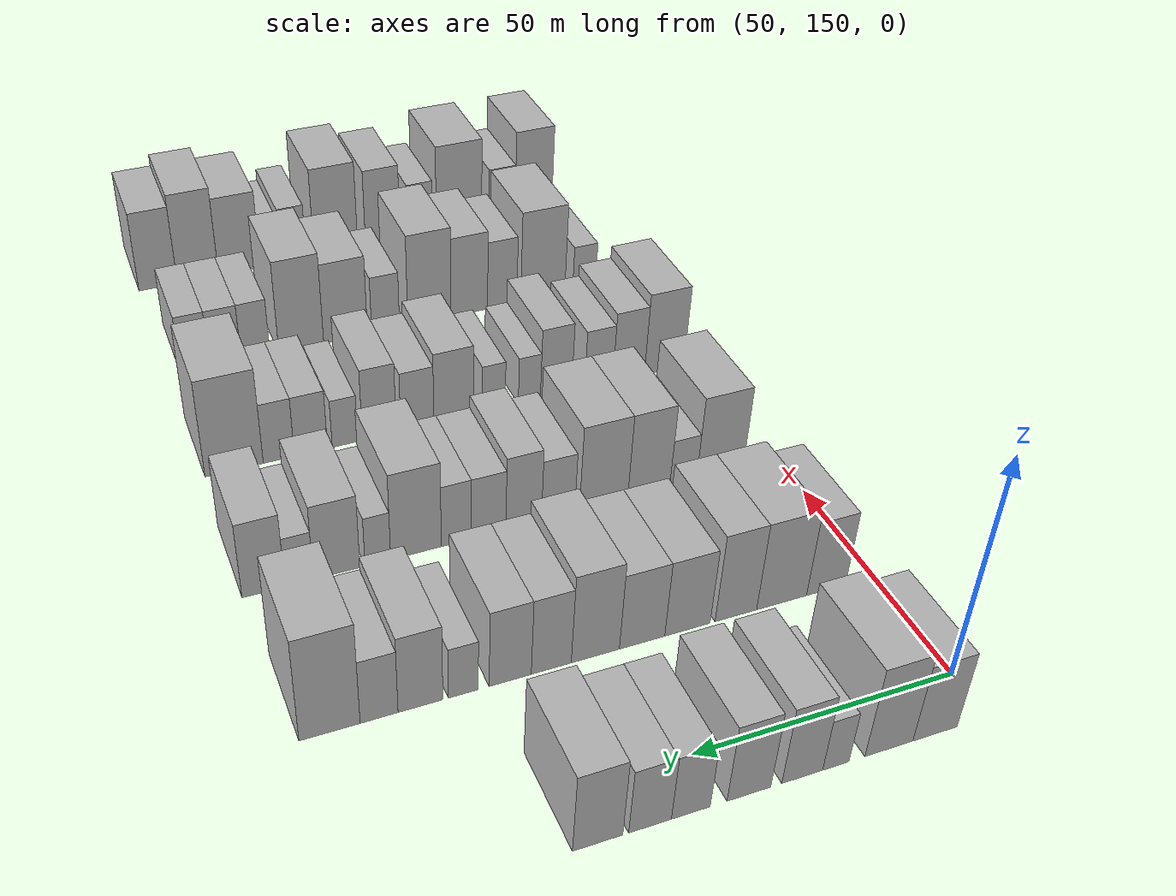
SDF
<sdf version="1.6">
 <world name="default">
  <model name="building_78">
   <static>1</static>
   <pose>50.0000 160.2288 0 0.000000 0.000000 0.000000</pose>
   <link name="link">
    <pose>0 0 9.00 0 0 0</pose>
    <collision name="collision"><geometry><box><size>20.0000 8.6067 18.0000</size></box></geometry></collision>
    <visual name="visual">
     <cast_shadows>0</cast_shadows>
     <geometry><box><size>20.0000 8.6067 18.0000</size></box></geometry>
     <material>
      <script>
       <uri>model://HANNAS_wall/materials/scripts</uri>
       <uri>model://HANNAS_wall/materials/textures</uri>
       <name>vrc/HANNAS_wall</name>
      </script>
     </material>
    </visual>
   </link>
  </model>
  <model name="building_79">
   <static>1</static>
   <pose>50.0000 169.1018 0 0.000000 0.000000 0.000000</pose>
   <link name="link">
    <pose>0 0 10.50 0 0 0</pose>
    <collision name="collision"><geometry><box><size>20.0000 9.1393 21.0000</size></box></geometry></collision>
    <visual name="visual">
     <cast_shadows>0</cast_shadows>
     <geometry><box><size>20.0000 9.1393 21.0000</size></box></geometry>
     <material>
      <script>
       <uri>model://HANNAS_wall/materials/scripts</uri>
       <uri>model://HANNAS_wall/materials/textures</uri>
       <name>vrc/HANNAS_wall</name>
      </script>
     </material>
    </visual>
   </link>
  </model>
  <model name="building_80">
   <static>1</static>
   <pose>50.0000 179.1270 0 0.000000 0.000000 0.000000</pose>
   <link name="link">
    <pose>0 0 6.00 0 0 0</pose>
    <collision name="collision"><geometry><box><size>20.0000 4.9110 12.0000</size></box></geometry></collision>
    <visual name="visual">
     <cast_shadows>0</cast_shadows>
     <geometry><box><size>20.0000 4.9110 12.0000</size></box></geometry>
     <material>
      <script>
       <uri>model://HANNAS_wall/materials/scripts</uri>
       <uri>model://HANNAS_wall/materials/textures</uri>
       <name>vrc/HANNAS_wall</name>
      </script>
     </material>
    </visual>
   </link>
  </model>
  <model name="building_81">
   <static>1</static>
   <pose>50.0000 185.3414 0 0.000000 0.000000 0.000000</pose>
   <link name="link">
    <pose>0 0 9.00 0 0 0</pose>
    <collision name="collision"><geometry><box><size>20.0000 7.5180 18.0000</size></box></geometry></collision>
    <visual name="visual">
     <cast_shadows>0</cast_shadows>
     <geometry><box><size>20.0000 7.5180 18.0000</size></box></geometry>
     <material>
      <script>
       <uri>model://HANNAS_wall/materials/scripts</uri>
       <uri>model://HANNAS_wall/materials/textures</uri>
       <name>vrc/HANNAS_wall</name>
      </script>
     </material>
    </visual>
   </link>
  </model>
  <model name="building_82">
   <static>1</static>
   <pose>50.0000 195.0467 0 0.000000 0.000000 0.000000</pose>
   <link name="link">
    <pose>0 0 9.00 0 0 0</pose>
    <collision name="collision"><geometry><box><size>20.0000 7.8925 18.0000</size></box></geometry></collision>
    <visual name="visual">
     <cast_shadows>0</cast_shadows>
     <geometry><box><size>20.0000 7.8925 18.0000</size></box></geometry>
     <material>
      <script>
       <uri>model://HANNAS_wall/materials/scripts</uri>
       <uri>model://HANNAS_wall/materials/textures</uri>
       <name>vrc/HANNAS_wall</name>
      </script>
     </material>
    </visual>
   </link>
  </model>
  <model name="building_83">
   <static>1</static>
   <pose>50.0000 205.3990 0 0.000000 0.000000 0.000000</pose>
   <link name="link">
    <pose>0 0 7.50 0 0 0</pose>
    <collision name="collision"><geometry><box><size>20.0000 6.8121 15.0000</size></box></geometry></collision>
    <visual name="visual">
     <cast_shadows>0</cast_shadows>
     <geometry><box><size>20.0000 6.8121 15.0000</size></box></geometry>
     <material>
      <script>
       <uri>model://HANNAS_wall/materials/scripts</uri>
       <uri>model://HANNAS_wall/materials/textures</uri>
       <name>vrc/HANNAS_wall</name>
      </script>
     </material>
    </visual>
   </link>
  </model>
  <model name="building_84">
   <static>1</static>
   <pose>50.0000 212.5013 0 0.000000 0.000000 0.000000</pose>
   <link name="link">
    <pose>0 0 7.50 0 0 0</pose>
    <collision name="collision"><geometry><box><size>20.0000 7.3925 15.0000</size></box></geometry></collision>
    <visual name="visual">
     <cast_shadows>0</cast_shadows>
     <geometry><box><size>20.0000 7.3925 15.0000</size></box></geometry>
     <material>
      <script>
       <uri>model://HANNAS_wall/materials/scripts</uri>
       <uri>model://HANNAS_wall/materials/textures</uri>
       <name>vrc/HANNAS_wall</name>
      </script>
     </material>
    </visual>
   </link>
  </model>
  <model name="building_85">
   <static>1</static>
   <pose>50.0000 221.4630 0 0.000000 0.000000 0.000000</pose>
   <link name="link">
    <pose>0 0 9.00 0 0 0</pose>
    <collision name="collision"><geometry><box><size>20.0000 8.5307 18.0000</size></box></geometry></collision>
    <visual name="visual">
     <cast_shadows>0</cast_shadows>
     <geometry><box><size>20.0000 8.5307 18.0000</size></box></geometry>
     <material>
      <script>
       <uri>model://HANNAS_wall/materials/scripts</uri>
       <uri>model://HANNAS_wall/materials/textures</uri>
       <name>vrc/HANNAS_wall</name>
      </script>
     </material>
    </visual>
   </link>
  </model>
  <model name="building_198">
   <static>1</static>
   <pose>85.0000 159.9874 0 0.000000 0.000000 0.000000</pose>
   <link name="link">
    <pose>0 0 9.00 0 0 0</pose>
    <collision name="collision"><geometry><box><size>20.0000 8.1639 18.0000</size></box></geometry></collision>
    <visual name="visual">
     <cast_shadows>0</cast_shadows>
     <geometry><box><size>20.0000 8.1639 18.0000</size></box></geometry>
     <material>
      <script>
       <uri>model://HANNAS_wall/materials/scripts</uri>
       <uri>model://HANNAS_wall/materials/textures</uri>
       <name>vrc/HANNAS_wall</name>
      </script>
     </material>
    </visual>
   </link>
  </model>
  <model name="building_199">
   <static>1</static>
   <pose>85.0000 169.2278 0 0.000000 0.000000 0.000000</pose>
   <link name="link">
    <pose>0 0 10.50 0 0 0</pose>
    <collision name="collision"><geometry><box><size>20.0000 10.3170 21.0000</size></box></geometry></collision>
    <visual name="visual">
     <cast_shadows>0</cast_shadows>
     <geometry><box><size>20.0000 10.3170 21.0000</size></box></geometry>
     <material>
      <script>
       <uri>model://HANNAS_wall/materials/scripts</uri>
       <uri>model://HANNAS_wall/materials/textures</uri>
       <name>vrc/HANNAS_wall</name>
      </script>
     </material>
    </visual>
   </link>
  </model>
  <model name="building_200">
   <static>1</static>
   <pose>85.0000 178.5947 0 0.000000 0.000000 0.000000</pose>
   <link name="link">
    <pose>0 0 10.50 0 0 0</pose>
    <collision name="collision"><geometry><box><size>20.0000 8.4166 21.0000</size></box></geometry></collision>
    <visual name="visual">
     <cast_shadows>0</cast_shadows>
     <geometry><box><size>20.0000 8.4166 21.0000</size></box></geometry>
     <material>
      <script>
       <uri>model://HANNAS_wall/materials/scripts</uri>
       <uri>model://HANNAS_wall/materials/textures</uri>
       <name>vrc/HANNAS_wall</name>
      </script>
     </material>
    </visual>
   </link>
  </model>
  <model name="building_201">
   <static>1</static>
   <pose>85.0000 188.3005 0 0.000000 0.000000 0.000000</pose>
   <link name="link">
    <pose>0 0 9.00 0 0 0</pose>
    <collision name="collision"><geometry><box><size>20.0000 8.9950 18.0000</size></box></geometry></collision>
    <visual name="visual">
     <cast_shadows>0</cast_shadows>
     <geometry><box><size>20.0000 8.9950 18.0000</size></box></geometry>
     <material>
      <script>
       <uri>model://HANNAS_wall/materials/scripts</uri>
       <uri>model://HANNAS_wall/materials/textures</uri>
       <name>vrc/HANNAS_wall</name>
      </script>
     </material>
    </visual>
   </link>
  </model>
  <model name="building_202">
   <static>1</static>
   <pose>85.0000 197.2170 0 0.000000 0.000000 0.000000</pose>
   <link name="link">
    <pose>0 0 9.00 0 0 0</pose>
    <collision name="collision"><geometry><box><size>20.0000 8.8379 18.0000</size></box></geometry></collision>
    <visual name="visual">
     <cast_shadows>0</cast_shadows>
     <geometry><box><size>20.0000 8.8379 18.0000</size></box></geometry>
     <material>
      <script>
       <uri>model://HANNAS_wall/materials/scripts</uri>
       <uri>model://HANNAS_wall/materials/textures</uri>
       <name>vrc/HANNAS_wall</name>
      </script>
     </material>
    </visual>
   </link>
  </model>
  <model name="building_203">
   <static>1</static>
   <pose>85.0000 206.2393 0 0.000000 0.000000 0.000000</pose>
   <link name="link">
    <pose>0 0 10.50 0 0 0</pose>
    <collision name="collision"><geometry><box><size>20.0000 9.2066 21.0000</size></box></geometry></collision>
    <visual name="visual">
     <cast_shadows>0</cast_shadows>
     <geometry><box><size>20.0000 9.2066 21.0000</size></box></geometry>
     <material>
      <script>
       <uri>model://HANNAS_wall/materials/scripts</uri>
       <uri>model://HANNAS_wall/materials/textures</uri>
       <name>vrc/HANNAS_wall</name>
      </script>
     </material>
    </visual>
   </link>
  </model>
  <model name="building_204">
   <static>1</static>
   <pose>85.0000 214.5995 0 0.000000 0.000000 0.000000</pose>
   <link name="link">
    <pose>0 0 9.00 0 0 0</pose>
    <collision name="collision"><geometry><box><size>20.0000 7.5139 18.0000</size></box></geometry></collision>
    <visual name="visual">
     <cast_shadows>0</cast_shadows>
     <geometry><box><size>20.0000 7.5139 18.0000</size></box></geometry>
     <material>
      <script>
       <uri>model://HANNAS_wall/materials/scripts</uri>
       <uri>model://HANNAS_wall/materials/textures</uri>
       <name>vrc/HANNAS_wall</name>
      </script>
     </material>
    </visual>
   </link>
  </model>
  <model name="building_205">
   <static>1</static>
   <pose>85.0000 222.2515 0 0.000000 0.000000 0.000000</pose>
   <link name="link">
    <pose>0 0 9.00 0 0 0</pose>
    <collision name="collision"><geometry><box><size>20.0000 7.7900 18.0000</size></box></geometry></collision>
    <visual name="visual">
     <cast_shadows>0</cast_shadows>
     <geometry><box><size>20.0000 7.7900 18.0000</size></box></geometry>
     <material>
      <script>
       <uri>model://HANNAS_wall/materials/scripts</uri>
       <uri>model://HANNAS_wall/materials/textures</uri>
       <name>vrc/HANNAS_wall</name>
      </script>
     </material>
    </visual>
   </link>
  </model>
  <model name="building_206">
   <static>1</static>
   <pose>85.0000 230.8549 0 0.000000 0.000000 0.000000</pose>
   <link name="link">
    <pose>0 0 6.00 0 0 0</pose>
    <collision name="collision"><geometry><box><size>20.0000 5.4168 12.0000</size></box></geometry></collision>
    <visual name="visual">
     <cast_shadows>0</cast_shadows>
     <geometry><box><size>20.0000 5.4168 12.0000</size></box></geometry>
     <material>
      <script>
       <uri>model://HANNAS_wall/materials/scripts</uri>
       <uri>model://HANNAS_wall/materials/textures</uri>
       <name>vrc/HANNAS_wall</name>
      </script>
     </material>
    </visual>
   </link>
  </model>
  <model name="building_207">
   <static>1</static>
   <pose>85.0000 238.5603 0 0.000000 0.000000 0.000000</pose>
   <link name="link">
    <pose>0 0 9.00 0 0 0</pose>
    <collision name="collision"><geometry><box><size>20.0000 7.9939 18.0000</size></box></geometry></collision>
    <visual name="visual">
     <cast_shadows>0</cast_shadows>
     <geometry><box><size>20.0000 7.9939 18.0000</size></box></geometry>
     <material>
      <script>
       <uri>model://HANNAS_wall/materials/scripts</uri>
       <uri>model://HANNAS_wall/materials/textures</uri>
       <name>vrc/HANNAS_wall</name>
      </script>
     </material>
    </visual>
   </link>
  </model>
  <model name="building_208">
   <static>1</static>
   <pose>85.0000 245.8861 0 0.000000 0.000000 0.000000</pose>
   <link name="link">
    <pose>0 0 7.50 0 0 0</pose>
    <collision name="collision"><geometry><box><size>20.0000 6.6578 15.0000</size></box></geometry></collision>
    <visual name="visual">
     <cast_shadows>0</cast_shadows>
     <geometry><box><size>20.0000 6.6578 15.0000</size></box></geometry>
     <material>
      <script>
       <uri>model://HANNAS_wall/materials/scripts</uri>
       <uri>model://HANNAS_wall/materials/textures</uri>
       <name>vrc/HANNAS_wall</name>
      </script>
     </material>
    </visual>
   </link>
  </model>
  <model name="building_209">
   <static>1</static>
   <pose>85.0000 254.5081 0 0.000000 0.000000 0.000000</pose>
   <link name="link">
    <pose>0 0 12.00 0 0 0</pose>
    <collision name="collision"><geometry><box><size>20.0000 10.5862 24.0000</size></box></geometry></collision>
    <visual name="visual">
     <cast_shadows>0</cast_shadows>
     <geometry><box><size>20.0000 10.5862 24.0000</size></box></geometry>
     <material>
      <script>
       <uri>model://HANNAS_wall/materials/scripts</uri>
       <uri>model://HANNAS_wall/materials/textures</uri>
       <name>vrc/HANNAS_wall</name>
      </script>
     </material>
    </visual>
   </link>
  </model>
  <model name="building_318">
   <static>1</static>
   <pose>120.0000 163.4691 0 0.000000 0.000000 0.000000</pose>
   <link name="link">
    <pose>0 0 10.50 0 0 0</pose>
    <collision name="collision"><geometry><box><size>20.0000 10.4484 21.0000</size></box></geometry></collision>
    <visual name="visual">
     <cast_shadows>0</cast_shadows>
     <geometry><box><size>20.0000 10.4484 21.0000</size></box></geometry>
     <material>
      <script>
       <uri>model://HANNAS_wall/materials/scripts</uri>
       <uri>model://HANNAS_wall/materials/textures</uri>
       <name>vrc/HANNAS_wall</name>
      </script>
     </material>
    </visual>
   </link>
  </model>
  <model name="building_319">
   <static>1</static>
   <pose>120.0000 171.6309 0 0.000000 0.000000 0.000000</pose>
   <link name="link">
    <pose>0 0 6.00 0 0 0</pose>
    <collision name="collision"><geometry><box><size>20.0000 5.8750 12.0000</size></box></geometry></collision>
    <visual name="visual">
     <cast_shadows>0</cast_shadows>
     <geometry><box><size>20.0000 5.8750 12.0000</size></box></geometry>
     <material>
      <script>
       <uri>model://HANNAS_wall/materials/scripts</uri>
       <uri>model://HANNAS_wall/materials/textures</uri>
       <name>vrc/HANNAS_wall</name>
      </script>
     </material>
    </visual>
   </link>
  </model>
  <model name="building_320">
   <static>1</static>
   <pose>120.0000 179.1390 0 0.000000 0.000000 0.000000</pose>
   <link name="link">
    <pose>0 0 10.50 0 0 0</pose>
    <collision name="collision"><geometry><box><size>20.0000 9.1412 21.0000</size></box></geometry></collision>
    <visual name="visual">
     <cast_shadows>0</cast_shadows>
     <geometry><box><size>20.0000 9.1412 21.0000</size></box></geometry>
     <material>
      <script>
       <uri>model://HANNAS_wall/materials/scripts</uri>
       <uri>model://HANNAS_wall/materials/textures</uri>
       <name>vrc/HANNAS_wall</name>
      </script>
     </material>
    </visual>
   </link>
  </model>
  <model name="building_321">
   <static>1</static>
   <pose>120.0000 188.8757 0 0.000000 0.000000 0.000000</pose>
   <link name="link">
    <pose>0 0 10.50 0 0 0</pose>
    <collision name="collision"><geometry><box><size>20.0000 10.3323 21.0000</size></box></geometry></collision>
    <visual name="visual">
     <cast_shadows>0</cast_shadows>
     <geometry><box><size>20.0000 10.3323 21.0000</size></box></geometry>
     <material>
      <script>
       <uri>model://HANNAS_wall/materials/scripts</uri>
       <uri>model://HANNAS_wall/materials/textures</uri>
       <name>vrc/HANNAS_wall</name>
      </script>
     </material>
    </visual>
   </link>
  </model>
  <model name="building_322">
   <static>1</static>
   <pose>120.0000 198.5365 0 0.000000 0.000000 0.000000</pose>
   <link name="link">
    <pose>0 0 7.50 0 0 0</pose>
    <collision name="collision"><geometry><box><size>20.0000 6.9892 15.0000</size></box></geometry></collision>
    <visual name="visual">
     <cast_shadows>0</cast_shadows>
     <geometry><box><size>20.0000 6.9892 15.0000</size></box></geometry>
     <material>
      <script>
       <uri>model://HANNAS_wall/materials/scripts</uri>
       <uri>model://HANNAS_wall/materials/textures</uri>
       <name>vrc/HANNAS_wall</name>
      </script>
     </material>
    </visual>
   </link>
  </model>
  <model name="building_323">
   <static>1</static>
   <pose>120.0000 205.7284 0 0.000000 0.000000 0.000000</pose>
   <link name="link">
    <pose>0 0 9.00 0 0 0</pose>
    <collision name="collision"><geometry><box><size>20.0000 7.3947 18.0000</size></box></geometry></collision>
    <visual name="visual">
     <cast_shadows>0</cast_shadows>
     <geometry><box><size>20.0000 7.3947 18.0000</size></box></geometry>
     <material>
      <script>
       <uri>model://HANNAS_wall/materials/scripts</uri>
       <uri>model://HANNAS_wall/materials/textures</uri>
       <name>vrc/HANNAS_wall</name>
      </script>
     </material>
    </visual>
   </link>
  </model>
  <model name="building_324">
   <static>1</static>
   <pose>120.0000 212.9376 0 0.000000 0.000000 0.000000</pose>
   <link name="link">
    <pose>0 0 7.50 0 0 0</pose>
    <collision name="collision"><geometry><box><size>20.0000 7.0237 15.0000</size></box></geometry></collision>
    <visual name="visual">
     <cast_shadows>0</cast_shadows>
     <geometry><box><size>20.0000 7.0237 15.0000</size></box></geometry>
     <material>
      <script>
       <uri>model://HANNAS_wall/materials/scripts</uri>
       <uri>model://HANNAS_wall/materials/textures</uri>
       <name>vrc/HANNAS_wall</name>
      </script>
     </material>
    </visual>
   </link>
  </model>
  <model name="building_325">
   <static>1</static>
   <pose>120.0000 219.4889 0 0.000000 0.000000 0.000000</pose>
   <link name="link">
    <pose>0 0 7.50 0 0 0</pose>
    <collision name="collision"><geometry><box><size>20.0000 6.0790 15.0000</size></box></geometry></collision>
    <visual name="visual">
     <cast_shadows>0</cast_shadows>
     <geometry><box><size>20.0000 6.0790 15.0000</size></box></geometry>
     <material>
      <script>
       <uri>model://HANNAS_wall/materials/scripts</uri>
       <uri>model://HANNAS_wall/materials/textures</uri>
       <name>vrc/HANNAS_wall</name>
      </script>
     </material>
    </visual>
   </link>
  </model>
  <model name="building_326">
   <static>1</static>
   <pose>120.0000 227.5560 0 0.000000 0.000000 0.000000</pose>
   <link name="link">
    <pose>0 0 10.50 0 0 0</pose>
    <collision name="collision"><geometry><box><size>20.0000 10.0551 21.0000</size></box></geometry></collision>
    <visual name="visual">
     <cast_shadows>0</cast_shadows>
     <geometry><box><size>20.0000 10.0551 21.0000</size></box></geometry>
     <material>
      <script>
       <uri>model://HANNAS_wall/materials/scripts</uri>
       <uri>model://HANNAS_wall/materials/textures</uri>
       <name>vrc/HANNAS_wall</name>
      </script>
     </material>
    </visual>
   </link>
  </model>
  <model name="building_327">
   <static>1</static>
   <pose>120.0000 235.0931 0 0.000000 0.000000 0.000000</pose>
   <link name="link">
    <pose>0 0 6.00 0 0 0</pose>
    <collision name="collision"><geometry><box><size>20.0000 5.0191 12.0000</size></box></geometry></collision>
    <visual name="visual">
     <cast_shadows>0</cast_shadows>
     <geometry><box><size>20.0000 5.0191 12.0000</size></box></geometry>
     <material>
      <script>
       <uri>model://HANNAS_wall/materials/scripts</uri>
       <uri>model://HANNAS_wall/materials/textures</uri>
       <name>vrc/HANNAS_wall</name>
      </script>
     </material>
    </visual>
   </link>
  </model>
  <model name="building_328">
   <static>1</static>
   <pose>120.0000 243.0816 0 0.000000 0.000000 0.000000</pose>
   <link name="link">
    <pose>0 0 9.00 0 0 0</pose>
    <collision name="collision"><geometry><box><size>20.0000 8.9579 18.0000</size></box></geometry></collision>
    <visual name="visual">
     <cast_shadows>0</cast_shadows>
     <geometry><box><size>20.0000 8.9579 18.0000</size></box></geometry>
     <material>
      <script>
       <uri>model://HANNAS_wall/materials/scripts</uri>
       <uri>model://HANNAS_wall/materials/textures</uri>
       <name>vrc/HANNAS_wall</name>
      </script>
     </material>
    </visual>
   </link>
  </model>
  <model name="building_329">
   <static>1</static>
   <pose>120.0000 250.2678 0 0.000000 0.000000 0.000000</pose>
   <link name="link">
    <pose>0 0 6.00 0 0 0</pose>
    <collision name="collision"><geometry><box><size>20.0000 5.4145 12.0000</size></box></geometry></collision>
    <visual name="visual">
     <cast_shadows>0</cast_shadows>
     <geometry><box><size>20.0000 5.4145 12.0000</size></box></geometry>
     <material>
      <script>
       <uri>model://HANNAS_wall/materials/scripts</uri>
       <uri>model://HANNAS_wall/materials/textures</uri>
       <name>vrc/HANNAS_wall</name>
      </script>
     </material>
    </visual>
   </link>
  </model>
  <model name="building_330">
   <static>1</static>
   <pose>120.0000 257.0215 0 0.000000 0.000000 0.000000</pose>
   <link name="link">
    <pose>0 0 9.00 0 0 0</pose>
    <collision name="collision"><geometry><box><size>20.0000 8.0928 18.0000</size></box></geometry></collision>
    <visual name="visual">
     <cast_shadows>0</cast_shadows>
     <geometry><box><size>20.0000 8.0928 18.0000</size></box></geometry>
     <material>
      <script>
       <uri>model://HANNAS_wall/materials/scripts</uri>
       <uri>model://HANNAS_wall/materials/textures</uri>
       <name>vrc/HANNAS_wall</name>
      </script>
     </material>
    </visual>
   </link>
  </model>
  <model name="building_441">
   <static>1</static>
   <pose>155.0000 158.6174 0 0.000000 0.000000 0.000000</pose>
   <link name="link">
    <pose>0 0 10.50 0 0 0</pose>
    <collision name="collision"><geometry><box><size>20.0000 9.5393 21.0000</size></box></geometry></collision>
    <visual name="visual">
     <cast_shadows>0</cast_shadows>
     <geometry><box><size>20.0000 9.5393 21.0000</size></box></geometry>
     <material>
      <script>
       <uri>model://HANNAS_wall/materials/scripts</uri>
       <uri>model://HANNAS_wall/materials/textures</uri>
       <name>vrc/HANNAS_wall</name>
      </script>
     </material>
    </visual>
   </link>
  </model>
  <model name="building_442">
   <static>1</static>
   <pose>155.0000 167.1602 0 0.000000 0.000000 0.000000</pose>
   <link name="link">
    <pose>0 0 9.00 0 0 0</pose>
    <collision name="collision"><geometry><box><size>20.0000 7.5463 18.0000</size></box></geometry></collision>
    <visual name="visual">
     <cast_shadows>0</cast_shadows>
     <geometry><box><size>20.0000 7.5463 18.0000</size></box></geometry>
     <material>
      <script>
       <uri>model://HANNAS_wall/materials/scripts</uri>
       <uri>model://HANNAS_wall/materials/textures</uri>
       <name>vrc/HANNAS_wall</name>
      </script>
     </material>
    </visual>
   </link>
  </model>
  <model name="building_443">
   <static>1</static>
   <pose>155.0000 174.2709 0 0.000000 0.000000 0.000000</pose>
   <link name="link">
    <pose>0 0 7.50 0 0 0</pose>
    <collision name="collision"><geometry><box><size>20.0000 6.6750 15.0000</size></box></geometry></collision>
    <visual name="visual">
     <cast_shadows>0</cast_shadows>
     <geometry><box><size>20.0000 6.6750 15.0000</size></box></geometry>
     <material>
      <script>
       <uri>model://HANNAS_wall/materials/scripts</uri>
       <uri>model://HANNAS_wall/materials/textures</uri>
       <name>vrc/HANNAS_wall</name>
      </script>
     </material>
    </visual>
   </link>
  </model>
  <model name="building_444">
   <static>1</static>
   <pose>155.0000 184.2248 0 0.000000 0.000000 0.000000</pose>
   <link name="link">
    <pose>0 0 9.00 0 0 0</pose>
    <collision name="collision"><geometry><box><size>20.0000 7.2327 18.0000</size></box></geometry></collision>
    <visual name="visual">
     <cast_shadows>0</cast_shadows>
     <geometry><box><size>20.0000 7.2327 18.0000</size></box></geometry>
     <material>
      <script>
       <uri>model://HANNAS_wall/materials/scripts</uri>
       <uri>model://HANNAS_wall/materials/textures</uri>
       <name>vrc/HANNAS_wall</name>
      </script>
     </material>
    </visual>
   </link>
  </model>
  <model name="building_445">
   <static>1</static>
   <pose>155.0000 190.3733 0 0.000000 0.000000 0.000000</pose>
   <link name="link">
    <pose>0 0 6.00 0 0 0</pose>
    <collision name="collision"><geometry><box><size>20.0000 5.0643 12.0000</size></box></geometry></collision>
    <visual name="visual">
     <cast_shadows>0</cast_shadows>
     <geometry><box><size>20.0000 5.0643 12.0000</size></box></geometry>
     <material>
      <script>
       <uri>model://HANNAS_wall/materials/scripts</uri>
       <uri>model://HANNAS_wall/materials/textures</uri>
       <name>vrc/HANNAS_wall</name>
      </script>
     </material>
    </visual>
   </link>
  </model>
  <model name="building_446">
   <static>1</static>
   <pose>155.0000 198.4944 0 0.000000 0.000000 0.000000</pose>
   <link name="link">
    <pose>0 0 6.00 0 0 0</pose>
    <collision name="collision"><geometry><box><size>20.0000 5.1780 12.0000</size></box></geometry></collision>
    <visual name="visual">
     <cast_shadows>0</cast_shadows>
     <geometry><box><size>20.0000 5.1780 12.0000</size></box></geometry>
     <material>
      <script>
       <uri>model://HANNAS_wall/materials/scripts</uri>
       <uri>model://HANNAS_wall/materials/textures</uri>
       <name>vrc/HANNAS_wall</name>
      </script>
     </material>
    </visual>
   </link>
  </model>
  <model name="building_447">
   <static>1</static>
   <pose>155.0000 207.4693 0 0.000000 0.000000 0.000000</pose>
   <link name="link">
    <pose>0 0 9.00 0 0 0</pose>
    <collision name="collision"><geometry><box><size>20.0000 8.7719 18.0000</size></box></geometry></collision>
    <visual name="visual">
     <cast_shadows>0</cast_shadows>
     <geometry><box><size>20.0000 8.7719 18.0000</size></box></geometry>
     <material>
      <script>
       <uri>model://HANNAS_wall/materials/scripts</uri>
       <uri>model://HANNAS_wall/materials/textures</uri>
       <name>vrc/HANNAS_wall</name>
      </script>
     </material>
    </visual>
   </link>
  </model>
  <model name="building_448">
   <static>1</static>
   <pose>155.0000 215.4840 0 0.000000 0.000000 0.000000</pose>
   <link name="link">
    <pose>0 0 7.50 0 0 0</pose>
    <collision name="collision"><geometry><box><size>20.0000 7.2574 15.0000</size></box></geometry></collision>
    <visual name="visual">
     <cast_shadows>0</cast_shadows>
     <geometry><box><size>20.0000 7.2574 15.0000</size></box></geometry>
     <material>
      <script>
       <uri>model://HANNAS_wall/materials/scripts</uri>
       <uri>model://HANNAS_wall/materials/textures</uri>
       <name>vrc/HANNAS_wall</name>
      </script>
     </material>
    </visual>
   </link>
  </model>
  <model name="building_449">
   <static>1</static>
   <pose>155.0000 223.7620 0 0.000000 0.000000 0.000000</pose>
   <link name="link">
    <pose>0 0 9.00 0 0 0</pose>
    <collision name="collision"><geometry><box><size>20.0000 7.2986 18.0000</size></box></geometry></collision>
    <visual name="visual">
     <cast_shadows>0</cast_shadows>
     <geometry><box><size>20.0000 7.2986 18.0000</size></box></geometry>
     <material>
      <script>
       <uri>model://HANNAS_wall/materials/scripts</uri>
       <uri>model://HANNAS_wall/materials/textures</uri>
       <name>vrc/HANNAS_wall</name>
      </script>
     </material>
    </visual>
   </link>
  </model>
  <model name="building_450">
   <static>1</static>
   <pose>155.0000 231.1476 0 0.000000 0.000000 0.000000</pose>
   <link name="link">
    <pose>0 0 6.00 0 0 0</pose>
    <collision name="collision"><geometry><box><size>20.0000 5.4724 12.0000</size></box></geometry></collision>
    <visual name="visual">
     <cast_shadows>0</cast_shadows>
     <geometry><box><size>20.0000 5.4724 12.0000</size></box></geometry>
     <material>
      <script>
       <uri>model://HANNAS_wall/materials/scripts</uri>
       <uri>model://HANNAS_wall/materials/textures</uri>
       <name>vrc/HANNAS_wall</name>
      </script>
     </material>
    </visual>
   </link>
  </model>
  <model name="building_451">
   <static>1</static>
   <pose>155.0000 238.3718 0 0.000000 0.000000 0.000000</pose>
   <link name="link">
    <pose>0 0 7.50 0 0 0</pose>
    <collision name="collision"><geometry><box><size>20.0000 6.9761 15.0000</size></box></geometry></collision>
    <visual name="visual">
     <cast_shadows>0</cast_shadows>
     <geometry><box><size>20.0000 6.9761 15.0000</size></box></geometry>
     <material>
      <script>
       <uri>model://HANNAS_wall/materials/scripts</uri>
       <uri>model://HANNAS_wall/materials/textures</uri>
       <name>vrc/HANNAS_wall</name>
      </script>
     </material>
    </visual>
   </link>
  </model>
  <model name="building_452">
   <static>1</static>
   <pose>155.0000 245.1079 0 0.000000 0.000000 0.000000</pose>
   <link name="link">
    <pose>0 0 7.50 0 0 0</pose>
    <collision name="collision"><geometry><box><size>20.0000 6.4960 15.0000</size></box></geometry></collision>
    <visual name="visual">
     <cast_shadows>0</cast_shadows>
     <geometry><box><size>20.0000 6.4960 15.0000</size></box></geometry>
     <material>
      <script>
       <uri>model://HANNAS_wall/materials/scripts</uri>
       <uri>model://HANNAS_wall/materials/textures</uri>
       <name>vrc/HANNAS_wall</name>
      </script>
     </material>
    </visual>
   </link>
  </model>
  <model name="building_453">
   <static>1</static>
   <pose>155.0000 254.3378 0 0.000000 0.000000 0.000000</pose>
   <link name="link">
    <pose>0 0 12.00 0 0 0</pose>
    <collision name="collision"><geometry><box><size>20.0000 11.9639 24.0000</size></box></geometry></collision>
    <visual name="visual">
     <cast_shadows>0</cast_shadows>
     <geometry><box><size>20.0000 11.9639 24.0000</size></box></geometry>
     <material>
      <script>
       <uri>model://HANNAS_wall/materials/scripts</uri>
       <uri>model://HANNAS_wall/materials/textures</uri>
       <name>vrc/HANNAS_wall</name>
      </script>
     </material>
    </visual>
   </link>
  </model>
  <model name="building_571">
   <static>1</static>
   <pose>190.0000 162.3410 0 0.000000 0.000000 0.000000</pose>
   <link name="link">
    <pose>0 0 6.00 0 0 0</pose>
    <collision name="collision"><geometry><box><size>20.0000 5.8284 12.0000</size></box></geometry></collision>
    <visual name="visual">
     <cast_shadows>0</cast_shadows>
     <geometry><box><size>20.0000 5.8284 12.0000</size></box></geometry>
     <material>
      <script>
       <uri>model://HANNAS_wall/materials/scripts</uri>
       <uri>model://HANNAS_wall/materials/textures</uri>
       <name>vrc/HANNAS_wall</name>
      </script>
     </material>
    </visual>
   </link>
  </model>
  <model name="building_572">
   <static>1</static>
   <pose>190.0000 172.8094 0 0.000000 0.000000 0.000000</pose>
   <link name="link">
    <pose>0 0 12.00 0 0 0</pose>
    <collision name="collision"><geometry><box><size>20.0000 11.1083 24.0000</size></box></geometry></collision>
    <visual name="visual">
     <cast_shadows>0</cast_shadows>
     <geometry><box><size>20.0000 11.1083 24.0000</size></box></geometry>
     <material>
      <script>
       <uri>model://HANNAS_wall/materials/scripts</uri>
       <uri>model://HANNAS_wall/materials/textures</uri>
       <name>vrc/HANNAS_wall</name>
      </script>
     </material>
    </visual>
   </link>
  </model>
  <model name="building_573">
   <static>1</static>
   <pose>190.0000 182.9887 0 0.000000 0.000000 0.000000</pose>
   <link name="link">
    <pose>0 0 9.00 0 0 0</pose>
    <collision name="collision"><geometry><box><size>20.0000 7.2503 18.0000</size></box></geometry></collision>
    <visual name="visual">
     <cast_shadows>0</cast_shadows>
     <geometry><box><size>20.0000 7.2503 18.0000</size></box></geometry>
     <material>
      <script>
       <uri>model://HANNAS_wall/materials/scripts</uri>
       <uri>model://HANNAS_wall/materials/textures</uri>
       <name>vrc/HANNAS_wall</name>
      </script>
     </material>
    </visual>
   </link>
  </model>
  <model name="building_574">
   <static>1</static>
   <pose>190.0000 191.0852 0 0.000000 0.000000 0.000000</pose>
   <link name="link">
    <pose>0 0 10.50 0 0 0</pose>
    <collision name="collision"><geometry><box><size>20.0000 8.9428 21.0000</size></box></geometry></collision>
    <visual name="visual">
     <cast_shadows>0</cast_shadows>
     <geometry><box><size>20.0000 8.9428 21.0000</size></box></geometry>
     <material>
      <script>
       <uri>model://HANNAS_wall/materials/scripts</uri>
       <uri>model://HANNAS_wall/materials/textures</uri>
       <name>vrc/HANNAS_wall</name>
      </script>
     </material>
    </visual>
   </link>
  </model>
  <model name="building_575">
   <static>1</static>
   <pose>190.0000 200.7558 0 0.000000 0.000000 0.000000</pose>
   <link name="link">
    <pose>0 0 12.00 0 0 0</pose>
    <collision name="collision"><geometry><box><size>20.0000 10.3984 24.0000</size></box></geometry></collision>
    <visual name="visual">
     <cast_shadows>0</cast_shadows>
     <geometry><box><size>20.0000 10.3984 24.0000</size></box></geometry>
     <material>
      <script>
       <uri>model://HANNAS_wall/materials/scripts</uri>
       <uri>model://HANNAS_wall/materials/textures</uri>
       <name>vrc/HANNAS_wall</name>
      </script>
     </material>
    </visual>
   </link>
  </model>
  <model name="building_576">
   <static>1</static>
   <pose>190.0000 211.2502 0 0.000000 0.000000 0.000000</pose>
   <link name="link">
    <pose>0 0 7.50 0 0 0</pose>
    <collision name="collision"><geometry><box><size>20.0000 6.5904 15.0000</size></box></geometry></collision>
    <visual name="visual">
     <cast_shadows>0</cast_shadows>
     <geometry><box><size>20.0000 6.5904 15.0000</size></box></geometry>
     <material>
      <script>
       <uri>model://HANNAS_wall/materials/scripts</uri>
       <uri>model://HANNAS_wall/materials/textures</uri>
       <name>vrc/HANNAS_wall</name>
      </script>
     </material>
    </visual>
   </link>
  </model>
  <model name="building_577">
   <static>1</static>
   <pose>190.0000 220.6597 0 0.000000 0.000000 0.000000</pose>
   <link name="link">
    <pose>0 0 10.50 0 0 0</pose>
    <collision name="collision"><geometry><box><size>20.0000 10.2287 21.0000</size></box></geometry></collision>
    <visual name="visual">
     <cast_shadows>0</cast_shadows>
     <geometry><box><size>20.0000 10.2287 21.0000</size></box></geometry>
     <material>
      <script>
       <uri>model://HANNAS_wall/materials/scripts</uri>
       <uri>model://HANNAS_wall/materials/textures</uri>
       <name>vrc/HANNAS_wall</name>
      </script>
     </material>
    </visual>
   </link>
  </model>
  <model name="building_578">
   <static>1</static>
   <pose>190.0000 230.9246 0 0.000000 0.000000 0.000000</pose>
   <link name="link">
    <pose>0 0 12.00 0 0 0</pose>
    <collision name="collision"><geometry><box><size>20.0000 10.3011 24.0000</size></box></geometry></collision>
    <visual name="visual">
     <cast_shadows>0</cast_shadows>
     <geometry><box><size>20.0000 10.3011 24.0000</size></box></geometry>
     <material>
      <script>
       <uri>model://HANNAS_wall/materials/scripts</uri>
       <uri>model://HANNAS_wall/materials/textures</uri>
       <name>vrc/HANNAS_wall</name>
      </script>
     </material>
    </visual>
   </link>
  </model>
  <model name="building_579">
   <static>1</static>
   <pose>190.0000 241.3185 0 0.000000 0.000000 0.000000</pose>
   <link name="link">
    <pose>0 0 7.50 0 0 0</pose>
    <collision name="collision"><geometry><box><size>20.0000 6.4867 15.0000</size></box></geometry></collision>
    <visual name="visual">
     <cast_shadows>0</cast_shadows>
     <geometry><box><size>20.0000 6.4867 15.0000</size></box></geometry>
     <material>
      <script>
       <uri>model://HANNAS_wall/materials/scripts</uri>
       <uri>model://HANNAS_wall/materials/textures</uri>
       <name>vrc/HANNAS_wall</name>
      </script>
     </material>
    </visual>
   </link>
  </model>
  <model name="building_580">
   <static>1</static>
   <pose>190.0000 248.0989 0 0.000000 0.000000 0.000000</pose>
   <link name="link">
    <pose>0 0 7.50 0 0 0</pose>
    <collision name="collision"><geometry><box><size>20.0000 7.0741 15.0000</size></box></geometry></collision>
    <visual name="visual">
     <cast_shadows>0</cast_shadows>
     <geometry><box><size>20.0000 7.0741 15.0000</size></box></geometry>
     <material>
      <script>
       <uri>model://HANNAS_wall/materials/scripts</uri>
       <uri>model://HANNAS_wall/materials/textures</uri>
       <name>vrc/HANNAS_wall</name>
      </script>
     </material>
    </visual>
   </link>
  </model>
  <model name="building_581">
   <static>1</static>
   <pose>190.0000 254.8633 0 0.000000 0.000000 0.000000</pose>
   <link name="link">
    <pose>0 0 7.50 0 0 0</pose>
    <collision name="collision"><geometry><box><size>20.0000 6.4546 15.0000</size></box></geometry></collision>
    <visual name="visual">
     <cast_shadows>0</cast_shadows>
     <geometry><box><size>20.0000 6.4546 15.0000</size></box></geometry>
     <material>
      <script>
       <uri>model://HANNAS_wall/materials/scripts</uri>
       <uri>model://HANNAS_wall/materials/textures</uri>
       <name>vrc/HANNAS_wall</name>
      </script>
     </material>
    </visual>
   </link>
  </model>
  <model name="building_702">
   <static>1</static>
   <pose>225.0000 160.9489 0 0.000000 0.000000 0.000000</pose>
   <link name="link">
    <pose>0 0 12.00 0 0 0</pose>
    <collision name="collision"><geometry><box><size>20.0000 9.9955 24.0000</size></box></geometry></collision>
    <visual name="visual">
     <cast_shadows>0</cast_shadows>
     <geometry><box><size>20.0000 9.9955 24.0000</size></box></geometry>
     <material>
      <script>
       <uri>model://HANNAS_wall/materials/scripts</uri>
       <uri>model://HANNAS_wall/materials/textures</uri>
       <name>vrc/HANNAS_wall</name>
      </script>
     </material>
    </visual>
   </link>
  </model>
  <model name="building_703">
   <static>1</static>
   <pose>225.0000 169.4402 0 0.000000 0.000000 0.000000</pose>
   <link name="link">
    <pose>0 0 7.50 0 0 0</pose>
    <collision name="collision"><geometry><box><size>20.0000 6.9871 15.0000</size></box></geometry></collision>
    <visual name="visual">
     <cast_shadows>0</cast_shadows>
     <geometry><box><size>20.0000 6.9871 15.0000</size></box></geometry>
     <material>
      <script>
       <uri>model://HANNAS_wall/materials/scripts</uri>
       <uri>model://HANNAS_wall/materials/textures</uri>
       <name>vrc/HANNAS_wall</name>
      </script>
     </material>
    </visual>
   </link>
  </model>
  <model name="building_704">
   <static>1</static>
   <pose>225.0000 180.9091 0 0.000000 0.000000 0.000000</pose>
   <link name="link">
    <pose>0 0 12.00 0 0 0</pose>
    <collision name="collision"><geometry><box><size>20.0000 11.9506 24.0000</size></box></geometry></collision>
    <visual name="visual">
     <cast_shadows>0</cast_shadows>
     <geometry><box><size>20.0000 11.9506 24.0000</size></box></geometry>
     <material>
      <script>
       <uri>model://HANNAS_wall/materials/scripts</uri>
       <uri>model://HANNAS_wall/materials/textures</uri>
       <name>vrc/HANNAS_wall</name>
      </script>
     </material>
    </visual>
   </link>
  </model>
  <model name="building_705">
   <static>1</static>
   <pose>225.0000 191.1396 0 0.000000 0.000000 0.000000</pose>
   <link name="link">
    <pose>0 0 7.50 0 0 0</pose>
    <collision name="collision"><geometry><box><size>20.0000 6.5105 15.0000</size></box></geometry></collision>
    <visual name="visual">
     <cast_shadows>0</cast_shadows>
     <geometry><box><size>20.0000 6.5105 15.0000</size></box></geometry>
     <material>
      <script>
       <uri>model://HANNAS_wall/materials/scripts</uri>
       <uri>model://HANNAS_wall/materials/textures</uri>
       <name>vrc/HANNAS_wall</name>
      </script>
     </material>
    </visual>
   </link>
  </model>
  <model name="building_706">
   <static>1</static>
   <pose>225.0000 200.8143 0 0.000000 0.000000 0.000000</pose>
   <link name="link">
    <pose>0 0 10.50 0 0 0</pose>
    <collision name="collision"><geometry><box><size>20.0000 8.8390 21.0000</size></box></geometry></collision>
    <visual name="visual">
     <cast_shadows>0</cast_shadows>
     <geometry><box><size>20.0000 8.8390 21.0000</size></box></geometry>
     <material>
      <script>
       <uri>model://HANNAS_wall/materials/scripts</uri>
       <uri>model://HANNAS_wall/materials/textures</uri>
       <name>vrc/HANNAS_wall</name>
      </script>
     </material>
    </visual>
   </link>
  </model>
  <model name="building_707">
   <static>1</static>
   <pose>225.0000 212.7343 0 0.000000 0.000000 0.000000</pose>
   <link name="link">
    <pose>0 0 12.00 0 0 0</pose>
    <collision name="collision"><geometry><box><size>20.0000 11.0010 24.0000</size></box></geometry></collision>
    <visual name="visual">
     <cast_shadows>0</cast_shadows>
     <geometry><box><size>20.0000 11.0010 24.0000</size></box></geometry>
     <material>
      <script>
       <uri>model://HANNAS_wall/materials/scripts</uri>
       <uri>model://HANNAS_wall/materials/textures</uri>
       <name>vrc/HANNAS_wall</name>
      </script>
     </material>
    </visual>
   </link>
  </model>
  <model name="building_708">
   <static>1</static>
   <pose>225.0000 223.3896 0 0.000000 0.000000 0.000000</pose>
   <link name="link">
    <pose>0 0 7.50 0 0 0</pose>
    <collision name="collision"><geometry><box><size>20.0000 6.3096 15.0000</size></box></geometry></collision>
    <visual name="visual">
     <cast_shadows>0</cast_shadows>
     <geometry><box><size>20.0000 6.3096 15.0000</size></box></geometry>
     <material>
      <script>
       <uri>model://HANNAS_wall/materials/scripts</uri>
       <uri>model://HANNAS_wall/materials/textures</uri>
       <name>vrc/HANNAS_wall</name>
      </script>
     </material>
    </visual>
   </link>
  </model>
  <model name="building_709">
   <static>1</static>
   <pose>225.0000 229.0651 0 0.000000 0.000000 0.000000</pose>
   <link name="link">
    <pose>0 0 6.00 0 0 0</pose>
    <collision name="collision"><geometry><box><size>20.0000 5.0414 12.0000</size></box></geometry></collision>
    <visual name="visual">
     <cast_shadows>0</cast_shadows>
     <geometry><box><size>20.0000 5.0414 12.0000</size></box></geometry>
     <material>
      <script>
       <uri>model://HANNAS_wall/materials/scripts</uri>
       <uri>model://HANNAS_wall/materials/textures</uri>
       <name>vrc/HANNAS_wall</name>
      </script>
     </material>
    </visual>
   </link>
  </model>
  <model name="building_710">
   <static>1</static>
   <pose>225.0000 236.6927 0 0.000000 0.000000 0.000000</pose>
   <link name="link">
    <pose>0 0 10.50 0 0 0</pose>
    <collision name="collision"><geometry><box><size>20.0000 10.2138 21.0000</size></box></geometry></collision>
    <visual name="visual">
     <cast_shadows>0</cast_shadows>
     <geometry><box><size>20.0000 10.2138 21.0000</size></box></geometry>
     <material>
      <script>
       <uri>model://HANNAS_wall/materials/scripts</uri>
       <uri>model://HANNAS_wall/materials/textures</uri>
       <name>vrc/HANNAS_wall</name>
      </script>
     </material>
    </visual>
   </link>
  </model>
  <model name="building_711">
   <static>1</static>
   <pose>225.0000 246.7537 0 0.000000 0.000000 0.000000</pose>
   <link name="link">
    <pose>0 0 12.00 0 0 0</pose>
    <collision name="collision"><geometry><box><size>20.0000 9.9081 24.0000</size></box></geometry></collision>
    <visual name="visual">
     <cast_shadows>0</cast_shadows>
     <geometry><box><size>20.0000 9.9081 24.0000</size></box></geometry>
     <material>
      <script>
       <uri>model://HANNAS_wall/materials/scripts</uri>
       <uri>model://HANNAS_wall/materials/textures</uri>
       <name>vrc/HANNAS_wall</name>
      </script>
     </material>
    </visual>
   </link>
  </model>
  <model name="building_712">
   <static>1</static>
   <pose>225.0000 256.2560 0 0.000000 0.000000 0.000000</pose>
   <link name="link">
    <pose>0 0 10.50 0 0 0</pose>
    <collision name="collision"><geometry><box><size>20.0000 9.0964 21.0000</size></box></geometry></collision>
    <visual name="visual">
     <cast_shadows>0</cast_shadows>
     <geometry><box><size>20.0000 9.0964 21.0000</size></box></geometry>
     <material>
      <script>
       <uri>model://HANNAS_wall/materials/scripts</uri>
       <uri>model://HANNAS_wall/materials/textures</uri>
       <name>vrc/HANNAS_wall</name>
      </script>
     </material>
    </visual>
   </link>
  </model>
 </world>
</sdf>
